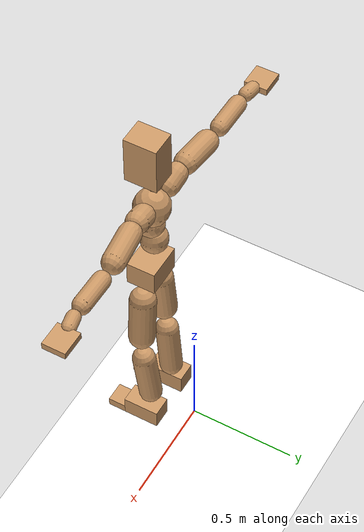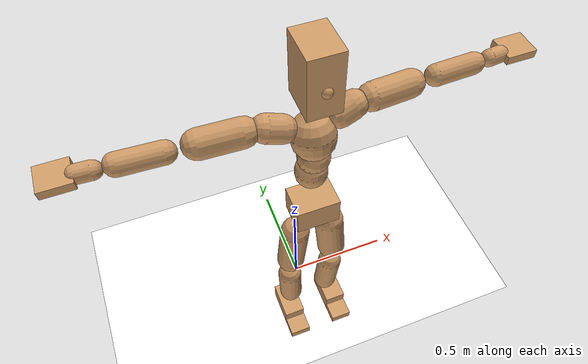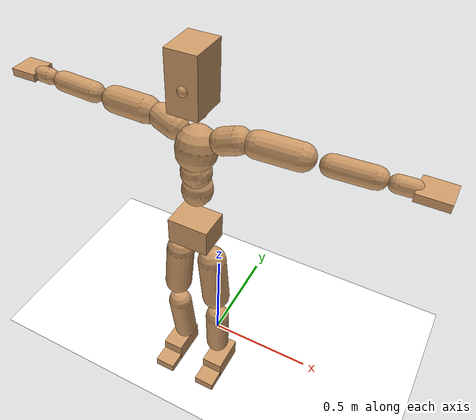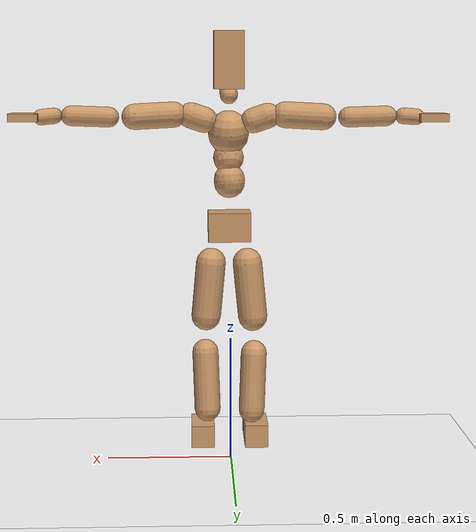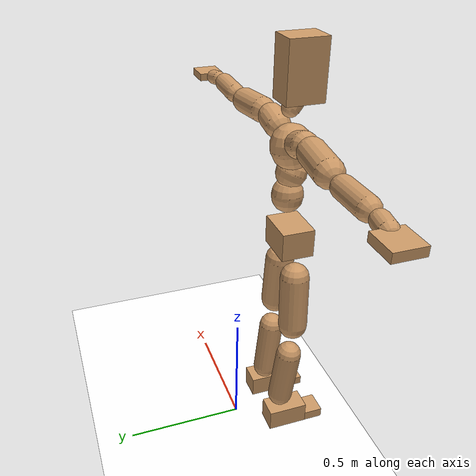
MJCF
<mujoco model="humanoid">
  <option integrator="implicitfast" />

  <visual>
    <global offwidth="1280" offheight="960" />
    <headlight active="1" ambient="0.34 0.34 0.34" diffuse="0.5 0.5 0.5" />
  </visual>

  <default>
    <joint damping="2" stiffness="2" armature="0.01" limited="true" solimplimit="0 .99 .01" />
    <geom condim="1" friction="0.7 0.005 0.0001" solimp=".99 .99 .003" solref="0.015 1" margin="0.001" rgba="0.8 0.6 .4 1" />
    <default class="smplcontact">
      <geom condim="3" friction="1. 0.005 0.0001" solref="0.015 1" solimp="0.98 0.98 0.001" priority="1" />
    </default>
    <default class="stiff_medium">
      <joint stiffness="10" />
    </default>
    <default class="stiff_medium_higher">
      <joint stiffness="50" />
    </default>
    <default class="stiff_high">
      <joint stiffness="100" />
    </default>
  </default>

  <asset>
    <texture type="skybox" builtin="gradient" rgb1="0.99 0.99 0.99" rgb2="0.608 0.828 0.892" width="100" />
    <texture builtin="flat" height="1278" mark="cross" markrgb="1 1 1" name="texgeom" random="0.01" rgb1="0.8 0.6 0.4" rgb2="0.8 0.6 0.4" type="cube" width="127" />
    <texture name="texplane" type="2d" builtin="checker" markrgb="1 1 1" rgb1="0.756 0.772 0.76" rgb2="0.6 0.6 0.6" width="100" height="100" />
    <material name="MatPlane" reflectance="0.5" texture="texplane" texrepeat="1 1" texuniform="true" />
    <material name="geom" texture="texgeom" texuniform="true" />
  </asset>

  <worldbody>
    <light name="tracking_light" pos="0 0 7" dir="0 0 -1" directional="true" cutoff="100" exponent="1" diffuse="1 1 1" specular="0.1 0.1 0.1" mode="trackcom" />
    <camera name="back" pos="0 3 2.4" xyaxes="-1 0 0 0 -1 2" mode="trackcom" />
    <camera name="side" pos="-3 0 2.4" xyaxes="0 -1 0 1 0 2" mode="trackcom" />
    <camera name="front_side" pos="-2.8 -2.8 0.8" xyaxes="0.5 -0.5 0 0.1 0.1 1" mode="trackcom" />
    <geom condim="3" name="floor" pos="0 0 0" rgba="1 1 1 1" size="100 100 .2" type="plane" material="MatPlane" />
    <body name="Pelvis" pos="-0.0018 -0.2233 0.9367" euler="90 0 0">
      <site name="Pelvis" size="0.01" />
      <freejoint name="Pelvis" />
      <geom type="box" pos="-0.0000 -0.0121 -0.0055" size="0.087658 0.059204 0.06806" quat="1.0000 0.0000 0.0000 0.0000" density="3165.830099" name="Pelvis" />
      <body name="L_Hip" pos="0.0695 -0.0914 -0.0068">
        <joint name="L_Hip_x" type="hinge" pos="0 0 0" axis="1 0 0" stiffness="10.0" range="-160.0 22.92" class="stiff_medium" damping="15.0" armature="0.01"/>
        <joint name="L_Hip_y" type="hinge" pos="0 0 0" axis="0 1 0" stiffness="10.0" range="-70.0 70.0" class="stiff_medium" damping="10.000000000000007" armature="0.010000000000000014"/>
        <joint name="L_Hip_z" type="hinge" pos="0 0 0" axis="0 0 1" stiffness="10.0" range="-28.65 90.0" class="stiff_medium" damping="9.999999999999998" armature="0.009999999999999998"/>
        <geom type="capsule" density="2040.816327" fromto="0.0069 -0.075 -0.0009 0.0274 -0.3002 -0.0036" size="0.0615" name="L_Hip" />
        <body name="L_Knee" pos="0.0343 -0.3752 -0.0045">
          <joint name="L_Knee_x" type="hinge" pos="0 0 0" axis="1 0 0" range="-5.16 171.89" damping="8.000000000000004" armature="0.010000000000000009" stiffness="2.0"/>
          <joint name="L_Knee_y" type="hinge" pos="0 0 0" axis="0 1 0" range="-4.58 6.88" damping="8.000000000000004" armature="0.01000000000000001" stiffness="2.0"/>
          <joint name="L_Knee_z" type="hinge" pos="0 0 0" axis="0 0 1" range="-6.88 4.58" damping="8.000000000000002" armature="0.010000000000000005" stiffness="2.0"/>
          <geom type="capsule" density="1234.567901" fromto="-0.0027 -0.0796 -0.0087 -0.0109 -0.3184 -0.035" size="0.0541" name="L_Knee" />
          <body name="L_Ankle" pos="-0.0136 -0.398 -0.0437">
            <joint name="L_Ankle_x" type="hinge" pos="0 0 0" axis="1 0 0" range="-45.84 45.84" class="stiff_medium" damping="6.000000000000027" armature="0.01000000000000009" stiffness="10.0"/>
            <joint name="L_Ankle_y" type="hinge" pos="0 0 0" axis="0 1 0" range="-74.48 22.92" class="stiff_medium" damping="3.0" armature="0.010000000000000002" stiffness="10.0"/>
            <joint name="L_Ankle_z" type="hinge" pos="0 0 0" axis="0 0 1" range="-4.58 4.58" class="stiff_medium" damping="5.999999999999902" armature="0.009999999999999676" stiffness="10.0"/>
            <geom type="box" pos="0.0233 -0.0239 0.0242" size="0.0483 0.0464 0.085" quat="1.0000 0.0000 0.0000 0.0000" density="449.071558" name="L_Ankle" class="smplcontact" />
            <body name="L_Toe" pos="0.0264 -0.0558 0.1193">
              <joint name="L_Toe_x" type="hinge" pos="0 0 0" axis="1 0 0" range="-91.67 22.92" armature="0.009999999999999665" damping="1.9999999999999665" stiffness="2.0"/>
              <joint name="L_Toe_y" type="hinge" pos="0 0 0" axis="0 1 0" range="-4.58 4.58" armature="0.01" damping="2.0" stiffness="2.0"/>
              <joint name="L_Toe_z" type="hinge" pos="0 0 0" axis="0 0 1" range="-4.58 4.58" armature="0.009999999999998623" damping="1.999999999999862" stiffness="2.0"/>
              <geom type="box" pos="-0.003 0.0055 0.0248" size="0.0478 0.02 0.0496" quat="1.0000 0.0000 0.0000 0.0000" density="423.206892" name="L_Toe" class="smplcontact" />
            </body>
          </body>
        </body>
      </body>
      <body name="R_Hip" pos="-0.0677 -0.0905 -0.0043">
        <joint name="R_Hip_x" type="hinge" pos="0 0 0" axis="1 0 0" stiffness="10.0" range="-160.0 22.92" class="stiff_medium" damping="15.0" armature="0.01"/>
        <joint name="R_Hip_y" type="hinge" pos="0 0 0" axis="0 1 0" stiffness="10.0" range="-70.0 70.0" class="stiff_medium" damping="10.000000000000007" armature="0.010000000000000014"/>
        <joint name="R_Hip_z" type="hinge" pos="0 0 0" axis="0 0 1" stiffness="10.0" range="-90.0 28.65" class="stiff_medium" damping="9.999999999999998" armature="0.009999999999999998"/>
        <geom type="capsule" density="2040.816327" fromto="-0.0077 -0.0765 -0.0018 -0.0306 -0.3061 -0.0071" size="0.0606" name="R_Hip" />
        <body name="R_Knee" pos="-0.0383 -0.3826 -0.0089">
          <joint name="R_Knee_x" type="hinge" pos="0 0 0" axis="1 0 0" range="-5.16 171.89" damping="8.000000000000004" armature="0.010000000000000009" stiffness="2.0"/>
          <joint name="R_Knee_y" type="hinge" pos="0 0 0" axis="0 1 0" range="-6.88 4.58" damping="8.000000000000004" armature="0.01000000000000001" stiffness="2.0"/>
          <joint name="R_Knee_z" type="hinge" pos="0 0 0" axis="0 0 1" range="-4.58 6.88" damping="8.000000000000002" armature="0.010000000000000005" stiffness="2.0"/>
          <geom type="capsule" density="1234.567901" fromto="0.0032 -0.0797 -0.0085 0.0126 -0.3187 -0.0338" size="0.0541" name="R_Knee" />
          <body name="R_Ankle" pos="0.0158 -0.3984 -0.0423">
            <joint name="R_Ankle_x" type="hinge" pos="0 0 0" axis="1 0 0" range="-45.84 45.84" class="stiff_medium" damping="6.000000000000027" armature="0.01000000000000009" stiffness="10.0"/>
            <joint name="R_Ankle_y" type="hinge" pos="0 0 0" axis="0 1 0" range="-22.92 74.48" class="stiff_medium" damping="3.0" armature="0.010000000000000002" stiffness="10.0"/>
            <joint name="R_Ankle_z" type="hinge" pos="0 0 0" axis="0 0 1" range="-4.58 4.58" class="stiff_medium" damping="5.999999999999902" armature="0.009999999999999676" stiffness="10.0"/>
            <geom type="box" pos="-0.0212 -0.0174 0.0256" size="0.0483 0.0478 0.0865" quat="1.0000 0.0000 0.0000 0.0000" density="434.700981" name="R_Ankle" class="smplcontact" />
            <body name="R_Toe" pos="-0.0254 -0.0481 0.1233">
              <joint name="R_Toe_x" type="hinge" pos="0 0 0" axis="1 0 0" range="-91.67 22.92" armature="0.009999999999999665" damping="1.9999999999999665" stiffness="2.0"/>
              <joint name="R_Toe_y" type="hinge" pos="0 0 0" axis="0 1 0" range="-4.58 4.58" armature="0.01" damping="2.0" stiffness="2.0"/>
              <joint name="R_Toe_z" type="hinge" pos="0 0 0" axis="0 0 1" range="-4.58 4.58" armature="0.009999999999998623" damping="1.999999999999862" stiffness="2.0"/>
              <geom type="box" pos="0.0042 0.0045 0.0227" size="0.0479 0.0216 0.0493" quat="1.0000 0.0000 0.0000 0.0000" density="407.384095" name="R_Toe" class="smplcontact" />
            </body>
          </body>
        </body>
      </body>
      <body name="Torso" pos="-0.0025 0.109 -0.0267">
        <joint name="Torso_x" type="hinge" pos="0 0 0" axis="1 0 0" range="-25.78 57.3" class="stiff_medium" damping="12.728474776128008" armature="0.008708750888250492" stiffness="8.26826422222222"/>
        <joint name="Torso_y" type="hinge" pos="0 0 0" axis="0 1 0" range="-57.3 57.3" class="stiff_high" damping="17.87412311921509" armature="0.00977748343410378" stiffness="81.68878000000001"/>
        <joint name="Torso_z" type="hinge" pos="0 0 0" axis="0 0 1" range="-34.38 34.38" class="stiff_high" damping="16.959069752024767" armature="0.00912557270784021" stiffness="78.79232790697674"/>
        <geom type="capsule" density="2040.816327" fromto="0.0025 0.0608 0.0005 0.003 0.0743 0.0006" size="0.063058" name="Torso" />
        <body name="Spine" pos="0.0055 0.1352 0.0011">
          <joint name="Spine_x" type="hinge" pos="0 0 0" axis="1 0 0" stiffness="8.565803333333335" range="-25.78 57.3" class="stiff_medium" damping="13.258304531440277" armature="0.009120641032094144"/>
          <joint name="Spine_y" type="hinge" pos="0 0 0" axis="0 1 0" stiffness="8.705589069767441" range="-57.3 57.3" class="stiff_high" damping="7.395731618239993" armature="0.009817121099353687"/>
          <joint name="Spine_z" type="hinge" pos="0 0 0" axis="0 0 1" stiffness="17.37568266666667" range="-34.38 34.38" class="stiff_high" damping="10.950811105336156" armature="0.009585575728422991"/>
          <geom type="capsule" density="2040.816327" fromto="0.0007 0.0238 0.0114 0.0008 0.0291 0.014" size="0.06191" name="Spine" />
          <body name="Chest" pos="0.0015 0.0529 0.0254">
            <joint name="Chest_x" type="hinge" pos="0 0 0" axis="1 0 0" stiffness="8.965253488372092" range="-25.78 57.3" class="stiff_medium" damping="13.703270111226741" armature="0.0093090067477259"/>
            <joint name="Chest_y" type="hinge" pos="0 0 0" axis="0 1 0" stiffness="9.41088953488372" range="-57.3 57.3" class="stiff_high" damping="7.7002723509890405" armature="0.009844678148452739"/>
            <joint name="Chest_z" type="hinge" pos="0 0 0" axis="0 0 1" stiffness="17.726312444444442" range="-34.38 34.38" class="stiff_high" damping="11.150454150982299" armature="0.009741688000914043"/>
            <geom type="capsule" density="2040.816327" fromto="-0.0009 0.0682 -0.0173 -0.001 0.0833 -0.0212" size="0.082164" name="Chest" />
            <body name="Neck" pos="-0.0028 0.2139 -0.0429">
              <joint name="Neck_x" type="hinge" pos="0 0 0" axis="1 0 0" range="-28.65 57.3" class="stiff_medium_higher" damping="9.812873501908179" armature="0.00993085806467006" stiffness="48.48145333333332"/>
              <joint name="Neck_y" type="hinge" pos="0 0 0" axis="0 1 0" range="-40.11 40.11" class="stiff_medium_higher" damping="9.749004747329652" armature="0.009738473106291522" stiffness="48.797738888888894"/>
              <joint name="Neck_z" type="hinge" pos="0 0 0" axis="0 0 1" range="-40.11 40.11" class="stiff_medium_higher" damping="9.91251978755331" armature="0.009944022934157455" stiffness="49.405582222222215"/>
              <geom type="capsule" density="1000" fromto="0.001 0.013 0.0103 0.0041 0.052 0.0411" size="0.035752" name="Neck" />
              <body name="Head" pos="0.0052 0.065 0.0513">
                <joint name="Head_x" type="hinge" pos="0 0 0" axis="1 0 0" range="-28.65 57.3" class="stiff_medium_higher" damping="1.9999999999999987" armature="0.009999999999999986" stiffness="50.0"/>
                <joint name="Head_y" type="hinge" pos="0 0 0" axis="0 1 0" range="-40.11 40.11" class="stiff_medium_higher" damping="2.0" armature="0.010000000000000002" stiffness="50.0"/>
                <joint name="Head_z" type="hinge" pos="0 0 0" axis="0 0 1" range="-40.11 40.11" class="stiff_medium_higher" damping="1.9999999999999987" armature="0.009999999999999988" stiffness="50.0"/>
                <geom type="box" pos="-0.0042 0.0876 -0.0116" size="0.0606 0.1154 0.076" quat="1.0000 0.0000 0.0000 0.0000" density="1018.069894" name="Head" />
                <geom type="capsule" name="nose" size="0.02 0.01" pos="0 0.07 0.05" quat="1 0 0 0" mass="0" contype="0" conaffinity="0" />
              </body>
            </body>
            <body name="L_Thorax" pos="0.0788 0.1217 -0.0341">
              <joint name="L_Thorax_x" type="hinge" pos="0 0 0" axis="1 0 0" range="-10.89 4.58" class="stiff_medium_higher" damping="20.000000000000018" armature="0.010000000000000021" stiffness="50.0"/>
              <joint name="L_Thorax_y" type="hinge" pos="0 0 0" axis="0 1 0" range="-28.65 17.19" class="stiff_medium_higher" damping="20.0" armature="0.010000000000000002" stiffness="50.0"/>
              <joint name="L_Thorax_z" type="hinge" pos="0 0 0" axis="0 0 1" range="-31.51 40.11" class="stiff_medium_higher" damping="20.0" armature="0.010000000000000002" stiffness="50.0"/>
              <geom type="capsule" density="1000" fromto="0.0182 0.0061 -0.0018 0.0728 0.0244 -0.0071" size="0.0521" name="L_Thorax" />
              <body name="L_Shoulder" pos="0.091 0.0305 -0.0089">
                <joint name="L_Shoulder_x" type="hinge" pos="0 0 0" axis="1 0 0" range="-97.4 97.4" class="stiff_medium" damping="6.000000000000085" armature="0.010000000000000286" stiffness="10.0"/>
                <joint name="L_Shoulder_y" type="hinge" pos="0 0 0" axis="0 1 0" range="-108.86 80.21" class="stiff_medium" damping="5.999999999999999" armature="0.009999999999999998" stiffness="10.0"/>
                <joint name="L_Shoulder_z" type="hinge" pos="0 0 0" axis="0 0 1" range="-97.4 85.94" class="stiff_medium" damping="6.000000000000002" armature="0.010000000000000007" stiffness="10.0"/>
                <geom type="capsule" density="1000" fromto="0.0519 -0.0026 -0.0055 0.2077 -0.0102 -0.022" size="0.0517" name="L_Shoulder" />
                <body name="L_Elbow" pos="0.2596 -0.0128 -0.0275">
                  <joint name="L_Elbow_x" type="hinge" pos="0 0 0" axis="1 0 0" range="-17.19 4.58" damping="4.99999999999986" armature="0.009999999999999442" stiffness="2.0"/>
                  <joint name="L_Elbow_y" type="hinge" pos="0 0 0" axis="0 1 0" range="-180.0 17.19" damping="5.0000000000000036" armature="0.010000000000000014" stiffness="2.0"/>
                  <joint name="L_Elbow_z" type="hinge" pos="0 0 0" axis="0 0 1" range="-100.84 4.58" damping="5.0" armature="0.010000000000000002" stiffness="2.0"/>
                  <geom type="capsule" density="1000" fromto="0.0498 0.0018 -0.0002 0.1994 0.0072 -0.0009" size="0.0405" name="L_Elbow" />
                  <body name="L_Wrist" pos="0.2492 0.009 -0.0012">
                    <joint name="L_Wrist_x" type="hinge" pos="0 0 0" axis="1 0 0" range="-180.0 22.92" armature="0.010000000000000299" damping="2.0000000000000298" stiffness="2.0"/>
                    <joint name="L_Wrist_y" type="hinge" pos="0 0 0" axis="0 1 0" range="-17.19 17.19" armature="0.009999999999999882" damping="1.9999999999999882" stiffness="2.0"/>
                    <joint name="L_Wrist_z" type="hinge" pos="0 0 0" axis="0 0 1" range="-22.92 22.92" armature="0.00999999999999996" damping="1.999999999999996" stiffness="2.0"/>
                    <geom type="capsule" density="1000" fromto="0.0168 -0.0016 -0.003 0.0672 -0.0065 -0.012" size="0.0318" name="L_Wrist" class="smplcontact" />
                    <body name="L_Hand" pos="0.084 -0.0082 -0.0149">
                      <joint name="L_Hand_x" type="hinge" pos="0 0 0" axis="1 0 0" range="-17.19 17.19" armature="0.0099999999999999" damping="1.99999999999999" stiffness="2.0"/>
                      <joint name="L_Hand_y" type="hinge" pos="0 0 0" axis="0 1 0" range="-51.57 51.57" armature="0.00999999999999994" damping="1.999999999999994" stiffness="2.0"/>
                      <joint name="L_Hand_z" type="hinge" pos="0 0 0" axis="0 0 1" range="-91.67 91.67" armature="0.009999999999999875" damping="1.9999999999999876" stiffness="2.0"/>
                      <geom type="box" pos="0.0493 0.001 -0.0058" size="0.0585 0.0158 0.0538" quat="1.0000 0.0000 0.0000 0.0000" density="400.552564" name="L_Hand" class="smplcontact" />
                    </body>
                  </body>
                </body>
              </body>
            </body>
            <body name="R_Thorax" pos="-0.0818 0.1188 -0.0386">
              <joint name="R_Thorax_x" type="hinge" pos="0 0 0" axis="1 0 0" range="-10.89 4.58" class="stiff_medium_higher" damping="20.000000000000018" armature="0.010000000000000021" stiffness="50.0"/>
              <joint name="R_Thorax_y" type="hinge" pos="0 0 0" axis="0 1 0" range="-17.19 28.65" class="stiff_medium_higher" damping="20.0" armature="0.010000000000000002" stiffness="50.0"/>
              <joint name="R_Thorax_z" type="hinge" pos="0 0 0" axis="0 0 1" range="-40.11 31.51" class="stiff_medium_higher" damping="20.0" armature="0.010000000000000002" stiffness="50.0"/>
              <geom type="capsule" density="1000" fromto="-0.0192 0.0065 -0.0018 -0.0768 0.026 -0.0073" size="0.0511" name="R_Thorax" />
              <body name="R_Shoulder" pos="-0.096 0.0326 -0.0091">
                <joint name="R_Shoulder_x" type="hinge" pos="0 0 0" axis="1 0 0" range="-97.4 97.4" class="stiff_medium" damping="6.000000000000085" armature="0.010000000000000286" stiffness="10.0"/>
                <joint name="R_Shoulder_y" type="hinge" pos="0 0 0" axis="0 1 0" range="-80.21 108.86" class="stiff_medium" damping="5.999999999999999" armature="0.009999999999999998" stiffness="10.0"/>
                <joint name="R_Shoulder_z" type="hinge" pos="0 0 0" axis="0 0 1" range="-85.94 97.4" class="stiff_medium" damping="6.000000000000002" armature="0.010000000000000007" stiffness="10.0"/>
                <geom type="capsule" density="1000" fromto="-0.0507 -0.0027 -0.0043 -0.203 -0.0107 -0.0171" size="0.0531" name="R_Shoulder" />
                <body name="R_Elbow" pos="-0.2537 -0.0133 -0.0214">
                  <joint name="R_Elbow_x" type="hinge" pos="0 0 0" axis="1 0 0" range="-17.19 4.58" damping="4.99999999999986" armature="0.009999999999999442" stiffness="2.0"/>
                  <joint name="R_Elbow_y" type="hinge" pos="0 0 0" axis="0 1 0" range="-17.19 180.0" damping="5.0000000000000036" armature="0.010000000000000014" stiffness="2.0"/>
                  <joint name="R_Elbow_z" type="hinge" pos="0 0 0" axis="0 0 1" range="-4.58 100.84" damping="5.0" armature="0.010000000000000002" stiffness="2.0"/>
                  <geom type="capsule" density="1000" fromto="-0.0511 0.0016 -0.0011 -0.2042 0.0062 -0.0044" size="0.0408" name="R_Elbow" />
                  <body name="R_Wrist" pos="-0.2553 0.0078 -0.0056">
                    <joint name="R_Wrist_x" type="hinge" pos="0 0 0" axis="1 0 0" range="-180.0 22.92" armature="0.010000000000000299" damping="2.0000000000000298" stiffness="2.0"/>
                    <joint name="R_Wrist_y" type="hinge" pos="0 0 0" axis="0 1 0" range="-17.19 17.19" armature="0.009999999999999882" damping="1.9999999999999882" stiffness="2.0"/>
                    <joint name="R_Wrist_z" type="hinge" pos="0 0 0" axis="0 0 1" range="-22.92 22.92" armature="0.00999999999999996" damping="1.999999999999996" stiffness="2.0"/>
                    <geom type="capsule" density="1000" fromto="-0.0169 -0.0012 -0.0021 -0.0677 -0.0049 -0.0083" size="0.0326" name="R_Wrist" class="smplcontact" />
                    <body name="R_Hand" pos="-0.0846 -0.0061 -0.0103">
                      <joint name="R_Hand_x" type="hinge" pos="0 0 0" axis="1 0 0" range="-17.19 17.19" armature="0.0099999999999999" damping="1.99999999999999" stiffness="2.0"/>
                      <joint name="R_Hand_y" type="hinge" pos="0 0 0" axis="0 1 0" range="-51.57 51.57" armature="0.00999999999999994" damping="1.999999999999994" stiffness="2.0"/>
                      <joint name="R_Hand_z" type="hinge" pos="0 0 0" axis="0 0 1" range="-91.67 91.67" armature="0.009999999999999875" damping="1.9999999999999876" stiffness="2.0"/>
                      <geom type="box" pos="-0.0462 -0.0009 -0.0079" size="0.0569 0.0164 0.0546" quat="1.0000 0.0000 0.0000 0.0000" density="403.679611" name="R_Hand" class="smplcontact" />
                    </body>
                  </body>
                </body>
              </body>
            </body>
          </body>
        </body>
      </body>
    </body>
  </worldbody>
  <actuator>
    <general name="L_Hip_x" joint="L_Hip_x" biastype="affine" gainprm="287.33006409732246" biasprm="-215.3247604770444 -180.0 -2.0" ctrllimited="true" ctrlrange="-1 1" forcerange="-360.0 360.0" />
    <general name="L_Hip_y" joint="L_Hip_y" biastype="affine" gainprm="219.9114857512855" biasprm="0.0 -180.0 -2.0000000000000013" ctrllimited="true" ctrlrange="-1 1" forcerange="-360.0 360.0" />
    <general name="L_Hip_z" joint="L_Hip_z" biastype="affine" gainprm="186.3749841742145" biasprm="96.3683546488669 -180.0 -1.9999999999999998" ctrllimited="true" ctrlrange="-1 1" forcerange="-360.0 360.0" />
    <general name="L_Knee_x" joint="L_Knee_x" biastype="affine" gainprm="278.10948965903646" biasprm="261.8988715665131 -180.0 -2.000000000000001" ctrllimited="true" ctrlrange="-1 1" forcerange="-360.0 360.0" />
    <general name="L_Knee_y" joint="L_Knee_y" biastype="affine" gainprm="18.001325905069514" biasprm="3.612831551628262 -180.0 -2.000000000000001" ctrllimited="true" ctrlrange="-1 1" forcerange="-360.0 360.0" />
    <general name="L_Knee_z" joint="L_Knee_z" biastype="affine" gainprm="18.001325905069514" biasprm="-3.612831551628262 -180.0 -2.0000000000000004" ctrllimited="true" ctrlrange="-1 1" forcerange="-360.0 360.0" />
    <general name="L_Ankle_x" joint="L_Ankle_x" biastype="affine" gainprm="72.00530362027807" biasprm="0.0 -90.0 -2.000000000000009" ctrllimited="true" ctrlrange="-1 1" forcerange="-180.0 180.0" />
    <general name="L_Ankle_y" joint="L_Ankle_y" biastype="affine" gainprm="76.49778111491148" biasprm="-40.49512930477244 -90.0 -2.0" ctrllimited="true" ctrlrange="-1 1" forcerange="-180.0 180.0" />
    <general name="L_Ankle_z" joint="L_Ankle_z" biastype="affine" gainprm="7.1942471767206255" biasprm="0.0 -90.0 -1.9999999999999676" ctrllimited="true" ctrlrange="-1 1" forcerange="-180.0 180.0" />
    <general name="L_Toe_x" joint="L_Toe_x" biastype="affine" gainprm="71.99902043497087" biasprm="-43.19689898685965 -72.0 -0.7999999999999866" ctrllimited="true" ctrlrange="-1 1" forcerange="-144.0 144.0" />
    <general name="L_Toe_y" joint="L_Toe_y" biastype="affine" gainprm="5.755397741376501" biasprm="0.0 -72.0 -0.8" ctrllimited="true" ctrlrange="-1 1" forcerange="-144.0 144.0" />
    <general name="L_Toe_z" joint="L_Toe_z" biastype="affine" gainprm="5.755397741376501" biasprm="0.0 -72.0 -0.7999999999999449" ctrllimited="true" ctrlrange="-1 1" forcerange="-144.0 144.0" />
    <general name="R_Hip_x" joint="R_Hip_x" biastype="affine" gainprm="287.33006409732246" biasprm="-215.3247604770444 -180.0 -2.0" ctrllimited="true" ctrlrange="-1 1" forcerange="-360.0 360.0" />
    <general name="R_Hip_y" joint="R_Hip_y" biastype="affine" gainprm="219.9114857512855" biasprm="0.0 -180.0 -2.0000000000000013" ctrllimited="true" ctrlrange="-1 1" forcerange="-360.0 360.0" />
    <general name="R_Hip_z" joint="R_Hip_z" biastype="affine" gainprm="186.3749841742145" biasprm="-96.3683546488669 -180.0 -1.9999999999999998" ctrllimited="true" ctrlrange="-1 1" forcerange="-360.0 360.0" />
    <general name="R_Knee_x" joint="R_Knee_x" biastype="affine" gainprm="278.10948965903646" biasprm="261.8988715665131 -180.0 -2.000000000000001" ctrllimited="true" ctrlrange="-1 1" forcerange="-360.0 360.0" />
    <general name="R_Knee_y" joint="R_Knee_y" biastype="affine" gainprm="18.001325905069514" biasprm="-3.612831551628262 -180.0 -2.000000000000001" ctrllimited="true" ctrlrange="-1 1" forcerange="-360.0 360.0" />
    <general name="R_Knee_z" joint="R_Knee_z" biastype="affine" gainprm="18.001325905069514" biasprm="3.612831551628262 -180.0 -2.0000000000000004" ctrllimited="true" ctrlrange="-1 1" forcerange="-360.0 360.0" />
    <general name="R_Ankle_x" joint="R_Ankle_x" biastype="affine" gainprm="72.00530362027807" biasprm="0.0 -90.0 -2.000000000000009" ctrllimited="true" ctrlrange="-1 1" forcerange="-180.0 180.0" />
    <general name="R_Ankle_y" joint="R_Ankle_y" biastype="affine" gainprm="76.49778111491148" biasprm="40.49512930477244 -90.0 -2.0" ctrllimited="true" ctrlrange="-1 1" forcerange="-180.0 180.0" />
    <general name="R_Ankle_z" joint="R_Ankle_z" biastype="affine" gainprm="7.1942471767206255" biasprm="0.0 -90.0 -1.9999999999999676" ctrllimited="true" ctrlrange="-1 1" forcerange="-180.0 180.0" />
    <general name="R_Toe_x" joint="R_Toe_x" biastype="affine" gainprm="71.99902043497087" biasprm="-43.19689898685965 -72.0 -0.7999999999999866" ctrllimited="true" ctrlrange="-1 1" forcerange="-144.0 144.0" />
    <general name="R_Toe_y" joint="R_Toe_y" biastype="affine" gainprm="5.755397741376501" biasprm="0.0 -72.0 -0.8" ctrllimited="true" ctrlrange="-1 1" forcerange="-144.0 144.0" />
    <general name="R_Toe_z" joint="R_Toe_z" biastype="affine" gainprm="5.755397741376501" biasprm="0.0 -72.0 -0.7999999999999449" ctrllimited="true" ctrlrange="-1 1" forcerange="-144.0 144.0" />
    <general name="Torso_x" joint="Torso_x" biastype="affine" gainprm="143.86973646295385" biasprm="54.58322211497719 -198.43834133333328 -3.394259940300802" ctrllimited="true" ctrlrange="-1 1" forcerange="-297.65751199999994 297.65751199999994" />
    <general name="Torso_y" joint="Torso_y" biastype="affine" gainprm="196.0675135423366" biasprm="0.0 -196.05307200000001 -3.5748246238430177" ctrllimited="true" ctrlrange="-1 1" forcerange="-294.079608 294.079608" />
    <general name="Torso_z" joint="Torso_z" biastype="affine" gainprm="113.46930987780738" biasprm="0.0 -189.10158697674416 -3.3918139504049534" ctrllimited="true" ctrlrange="-1 1" forcerange="-283.65238046511627 283.65238046511627" />
    <general name="Spine_x" joint="Spine_x" biastype="affine" gainprm="149.04698677238733" biasprm="56.54743648369821 -205.57928000000004 -3.5355478750507405" ctrllimited="true" ctrlrange="-1 1" forcerange="-308.36892000000006 308.36892000000006" />
    <general name="Spine_y" joint="Spine_y" biastype="affine" gainprm="208.94952805399288" biasprm="0.0 -208.93413767441862 -3.6978658091199965" ctrllimited="true" ctrlrange="-1 1" forcerange="-313.4012065116279 313.4012065116279" />
    <general name="Spine_z" joint="Spine_z" biastype="affine" gainprm="125.11413060229364" biasprm="0.0 -208.50819200000004 -3.650270368445385" ctrllimited="true" ctrlrange="-1 1" forcerange="-312.76228800000007 312.76228800000007" />
    <general name="Chest_x" joint="Chest_x" biastype="affine" gainprm="155.99751314539026" biasprm="59.184420008939576 -215.16608372093023 -3.654205362993798" ctrllimited="true" ctrlrange="-1 1" forcerange="-322.74912558139533 322.74912558139533" />
    <general name="Chest_y" joint="Chest_y" biastype="affine" gainprm="225.8779860987332" biasprm="0.0 -225.8613488372093 -3.8501361754945203" ctrllimited="true" ctrlrange="-1 1" forcerange="-338.79202325581394 338.79202325581394" />
    <general name="Chest_z" joint="Chest_z" biastype="affine" gainprm="127.63885096301357" biasprm="0.0 -212.71574933333332 -3.716818050327433" ctrllimited="true" ctrlrange="-1 1" forcerange="-319.073624 319.073624" />
    <general name="Neck_x" joint="Neck_x" biastype="affine" gainprm="26.181913254142554" biasprm="8.727304418047519 -34.90664639999999 -0.7850298801526543" ctrllimited="true" ctrlrange="-1 1" forcerange="-69.81329279999999 69.81329279999999" />
    <general name="Neck_y" joint="Neck_y" biastype="affine" gainprm="24.595872032742463" biasprm="0.0 -35.134372 -0.7799203797863722" ctrllimited="true" ctrlrange="-1 1" forcerange="-70.268744 70.268744" />
    <general name="Neck_z" joint="Neck_z" biastype="affine" gainprm="24.902247639134057" biasprm="0.0 -35.57201919999999 -0.7930015830042648" ctrllimited="true" ctrlrange="-1 1" forcerange="-71.14403839999999 71.14403839999999" />
    <general name="Head_x" joint="Head_x" biastype="affine" gainprm="18.001325905069514" biasprm="6.000441968356505 -24.0 -0.7999999999999995" ctrllimited="true" ctrlrange="-1 1" forcerange="-48.0 48.0" />
    <general name="Head_y" joint="Head_y" biastype="affine" gainprm="16.801237511398213" biasprm="0.0 -24.0 -0.8" ctrllimited="true" ctrlrange="-1 1" forcerange="-48.0 48.0" />
    <general name="Head_z" joint="Head_z" biastype="affine" gainprm="16.801237511398213" biasprm="0.0 -24.0 -0.7999999999999995" ctrllimited="true" ctrlrange="-1 1" forcerange="-48.0 48.0" />
    <general name="L_Thorax_x" joint="L_Thorax_x" biastype="affine" gainprm="16.200146117011364" biasprm="-6.6078165480505335 -120.0 -1.6000000000000014" ctrllimited="true" ctrlrange="-1 1" forcerange="-240.0 240.0" />
    <general name="L_Thorax_y" joint="L_Thorax_y" biastype="affine" gainprm="48.00353574685204" biasprm="-12.00088393671301 -120.0 -1.6" ctrllimited="true" ctrlrange="-1 1" forcerange="-240.0 240.0" />
    <general name="L_Thorax_z" joint="L_Thorax_z" biastype="affine" gainprm="75.00028861670033" biasprm="9.00589894029074 -120.0 -1.6" ctrllimited="true" ctrlrange="-1 1" forcerange="-240.0 240.0" />
    <general name="L_Shoulder_x" joint="L_Shoulder_x" biastype="affine" gainprm="81.5976331892389" biasprm="0.0 -48.0 -1.6000000000000227" ctrllimited="true" ctrlrange="-1 1" forcerange="-96.0 96.0" />
    <general name="L_Shoulder_y" joint="L_Shoulder_y" biastype="affine" gainprm="79.19745640189629" biasprm="-12.00088393671301 -48.0 -1.5999999999999999" ctrllimited="true" ctrlrange="-1 1" forcerange="-96.0 96.0" />
    <general name="L_Shoulder_z" joint="L_Shoulder_z" biastype="affine" gainprm="76.79727961455369" biasprm="-4.800353574685214 -48.0 -1.6000000000000005" ctrllimited="true" ctrlrange="-1 1" forcerange="-96.0 96.0" />
    <general name="L_Elbow_x" joint="L_Elbow_x" biastype="affine" gainprm="13.67849441372996" biasprm="-7.923096672353461 -72.0 -0.7999999999999776" ctrllimited="true" ctrlrange="-1 1" forcerange="-144.0 144.0" />
    <general name="L_Elbow_y" joint="L_Elbow_y" biastype="affine" gainprm="123.89813107227425" biasprm="-102.29653998619085 -72.0 -0.8000000000000006" ctrllimited="true" ctrlrange="-1 1" forcerange="-144.0 144.0" />
    <general name="L_Elbow_z" joint="L_Elbow_z" biastype="affine" gainprm="66.23733950828719" biasprm="-60.4819417669107 -72.0 -0.8" ctrllimited="true" ctrlrange="-1 1" forcerange="-144.0 144.0" />
    <general name="L_Wrist_x" joint="L_Wrist_x" biastype="affine" gainprm="21.24973270888136" biasprm="-16.449379134196157 -12.0 -0.8000000000000119" ctrllimited="true" ctrlrange="-1 1" forcerange="-24.0 24.0" />
    <general name="L_Wrist_y" joint="L_Wrist_y" biastype="affine" gainprm="3.6002651810139037" biasprm="0.0 -12.0 -0.7999999999999954" ctrllimited="true" ctrlrange="-1 1" forcerange="-24.0 24.0" />
    <general name="L_Wrist_z" joint="L_Wrist_z" biastype="affine" gainprm="4.800353574685205" biasprm="0.0 -12.0 -0.7999999999999985" ctrllimited="true" ctrlrange="-1 1" forcerange="-24.0 24.0" />
    <general name="L_Hand_x" joint="L_Hand_x" biastype="affine" gainprm="3.6002651810139037" biasprm="0.0 -12.0 -0.799999999999996" ctrllimited="true" ctrlrange="-1 1" forcerange="-24.0 24.0" />
    <general name="L_Hand_y" joint="L_Hand_y" biastype="affine" gainprm="10.800795543041708" biasprm="0.0 -12.0 -0.7999999999999976" ctrllimited="true" ctrlrange="-1 1" forcerange="-24.0 24.0" />
    <general name="L_Hand_z" joint="L_Hand_z" biastype="affine" gainprm="19.199319903638422" biasprm="0.0 -12.0 -0.799999999999995" ctrllimited="true" ctrlrange="-1 1" forcerange="-24.0 24.0" />
    <general name="R_Thorax_x" joint="R_Thorax_x" biastype="affine" gainprm="16.200146117011364" biasprm="-6.6078165480505335 -120.0 -1.6000000000000014" ctrllimited="true" ctrlrange="-1 1" forcerange="-240.0 240.0" />
    <general name="R_Thorax_y" joint="R_Thorax_y" biastype="affine" gainprm="48.00353574685204" biasprm="12.000883936713002 -120.0 -1.6" ctrllimited="true" ctrlrange="-1 1" forcerange="-240.0 240.0" />
    <general name="R_Thorax_z" joint="R_Thorax_z" biastype="affine" gainprm="75.00028861670033" biasprm="-9.00589894029074 -120.0 -1.6" ctrllimited="true" ctrlrange="-1 1" forcerange="-240.0 240.0" />
    <general name="R_Shoulder_x" joint="R_Shoulder_x" biastype="affine" gainprm="81.5976331892389" biasprm="0.0 -48.0 -1.6000000000000227" ctrllimited="true" ctrlrange="-1 1" forcerange="-96.0 96.0" />
    <general name="R_Shoulder_y" joint="R_Shoulder_y" biastype="affine" gainprm="79.19745640189629" biasprm="12.00088393671301 -48.0 -1.5999999999999999" ctrllimited="true" ctrlrange="-1 1" forcerange="-96.0 96.0" />
    <general name="R_Shoulder_z" joint="R_Shoulder_z" biastype="affine" gainprm="76.79727961455369" biasprm="4.800353574685204 -48.0 -1.6000000000000005" ctrllimited="true" ctrlrange="-1 1" forcerange="-96.0 96.0" />
    <general name="R_Elbow_x" joint="R_Elbow_x" biastype="affine" gainprm="13.67849441372996" biasprm="-7.923096672353461 -72.0 -0.7999999999999776" ctrllimited="true" ctrlrange="-1 1" forcerange="-144.0 144.0" />
    <general name="R_Elbow_y" joint="R_Elbow_y" biastype="affine" gainprm="123.89813107227425" biasprm="102.29653998619085 -72.0 -0.8000000000000006" ctrllimited="true" ctrlrange="-1 1" forcerange="-144.0 144.0" />
    <general name="R_Elbow_z" joint="R_Elbow_z" biastype="affine" gainprm="66.23733950828719" biasprm="60.481941766910694 -72.0 -0.8" ctrllimited="true" ctrlrange="-1 1" forcerange="-144.0 144.0" />
    <general name="R_Wrist_x" joint="R_Wrist_x" biastype="affine" gainprm="21.24973270888136" biasprm="-16.449379134196157 -12.0 -0.8000000000000119" ctrllimited="true" ctrlrange="-1 1" forcerange="-24.0 24.0" />
    <general name="R_Wrist_y" joint="R_Wrist_y" biastype="affine" gainprm="3.6002651810139037" biasprm="0.0 -12.0 -0.7999999999999954" ctrllimited="true" ctrlrange="-1 1" forcerange="-24.0 24.0" />
    <general name="R_Wrist_z" joint="R_Wrist_z" biastype="affine" gainprm="4.800353574685205" biasprm="0.0 -12.0 -0.7999999999999985" ctrllimited="true" ctrlrange="-1 1" forcerange="-24.0 24.0" />
    <general name="R_Hand_x" joint="R_Hand_x" biastype="affine" gainprm="3.6002651810139037" biasprm="0.0 -12.0 -0.799999999999996" ctrllimited="true" ctrlrange="-1 1" forcerange="-24.0 24.0" />
    <general name="R_Hand_y" joint="R_Hand_y" biastype="affine" gainprm="10.800795543041708" biasprm="0.0 -12.0 -0.7999999999999976" ctrllimited="true" ctrlrange="-1 1" forcerange="-24.0 24.0" />
    <general name="R_Hand_z" joint="R_Hand_z" biastype="affine" gainprm="19.199319903638422" biasprm="0.0 -12.0 -0.799999999999995" ctrllimited="true" ctrlrange="-1 1" forcerange="-24.0 24.0" />
  </actuator>
  <contact>
    <exclude body1="Torso" body2="Chest" />
    <exclude body1="Head" body2="Chest" />
    <exclude body1="R_Knee" body2="R_Toe" />
    <exclude body1="R_Knee" body2="L_Ankle" />
    <exclude body1="R_Knee" body2="L_Toe" />
    <exclude body1="L_Knee" body2="L_Toe" />
    <exclude body1="L_Knee" body2="R_Ankle" />
    <exclude body1="L_Knee" body2="R_Toe" />
    <exclude body1="L_Shoulder" body2="Chest" />
    <exclude body1="R_Shoulder" body2="Chest" />
  </contact>
  <sensor>
    <framelinvel name="sensor_Pelvis_framelinvel" objtype="xbody" objname="Pelvis" />
    <framelinvel name="sensor_L_Hip_framelinvel" objtype="xbody" objname="L_Hip" />
    <framelinvel name="sensor_L_Knee_framelinvel" objtype="xbody" objname="L_Knee" />
    <framelinvel name="sensor_L_Ankle_framelinvel" objtype="xbody" objname="L_Ankle" />
    <framelinvel name="sensor_L_Toe_framelinvel" objtype="xbody" objname="L_Toe" />
    <framelinvel name="sensor_R_Hip_framelinvel" objtype="xbody" objname="R_Hip" />
    <framelinvel name="sensor_R_Knee_framelinvel" objtype="xbody" objname="R_Knee" />
    <framelinvel name="sensor_R_Ankle_framelinvel" objtype="xbody" objname="R_Ankle" />
    <framelinvel name="sensor_R_Toe_framelinvel" objtype="xbody" objname="R_Toe" />
    <framelinvel name="sensor_Torso_framelinvel" objtype="xbody" objname="Torso" />
    <framelinvel name="sensor_Spine_framelinvel" objtype="xbody" objname="Spine" />
    <framelinvel name="sensor_Chest_framelinvel" objtype="xbody" objname="Chest" />
    <framelinvel name="sensor_Neck_framelinvel" objtype="xbody" objname="Neck" />
    <framelinvel name="sensor_Head_framelinvel" objtype="xbody" objname="Head" />
    <framelinvel name="sensor_L_Thorax_framelinvel" objtype="xbody" objname="L_Thorax" />
    <framelinvel name="sensor_L_Shoulder_framelinvel" objtype="xbody" objname="L_Shoulder" />
    <framelinvel name="sensor_L_Elbow_framelinvel" objtype="xbody" objname="L_Elbow" />
    <framelinvel name="sensor_L_Wrist_framelinvel" objtype="xbody" objname="L_Wrist" />
    <framelinvel name="sensor_L_Hand_framelinvel" objtype="xbody" objname="L_Hand" />
    <framelinvel name="sensor_R_Thorax_framelinvel" objtype="xbody" objname="R_Thorax" />
    <framelinvel name="sensor_R_Shoulder_framelinvel" objtype="xbody" objname="R_Shoulder" />
    <framelinvel name="sensor_R_Elbow_framelinvel" objtype="xbody" objname="R_Elbow" />
    <framelinvel name="sensor_R_Wrist_framelinvel" objtype="xbody" objname="R_Wrist" />
    <framelinvel name="sensor_R_Hand_framelinvel" objtype="xbody" objname="R_Hand" />
    <frameangvel name="sensor_Pelvis_frameangvel" objtype="xbody" objname="Pelvis" />
    <frameangvel name="sensor_L_Hip_frameangvel" objtype="xbody" objname="L_Hip" />
    <frameangvel name="sensor_L_Knee_frameangvel" objtype="xbody" objname="L_Knee" />
    <frameangvel name="sensor_L_Ankle_frameangvel" objtype="xbody" objname="L_Ankle" />
    <frameangvel name="sensor_L_Toe_frameangvel" objtype="xbody" objname="L_Toe" />
    <frameangvel name="sensor_R_Hip_frameangvel" objtype="xbody" objname="R_Hip" />
    <frameangvel name="sensor_R_Knee_frameangvel" objtype="xbody" objname="R_Knee" />
    <frameangvel name="sensor_R_Ankle_frameangvel" objtype="xbody" objname="R_Ankle" />
    <frameangvel name="sensor_R_Toe_frameangvel" objtype="xbody" objname="R_Toe" />
    <frameangvel name="sensor_Torso_frameangvel" objtype="xbody" objname="Torso" />
    <frameangvel name="sensor_Spine_frameangvel" objtype="xbody" objname="Spine" />
    <frameangvel name="sensor_Chest_frameangvel" objtype="xbody" objname="Chest" />
    <frameangvel name="sensor_Neck_frameangvel" objtype="xbody" objname="Neck" />
    <frameangvel name="sensor_Head_frameangvel" objtype="xbody" objname="Head" />
    <frameangvel name="sensor_L_Thorax_frameangvel" objtype="xbody" objname="L_Thorax" />
    <frameangvel name="sensor_L_Shoulder_frameangvel" objtype="xbody" objname="L_Shoulder" />
    <frameangvel name="sensor_L_Elbow_frameangvel" objtype="xbody" objname="L_Elbow" />
    <frameangvel name="sensor_L_Wrist_frameangvel" objtype="xbody" objname="L_Wrist" />
    <frameangvel name="sensor_L_Hand_frameangvel" objtype="xbody" objname="L_Hand" />
    <frameangvel name="sensor_R_Thorax_frameangvel" objtype="xbody" objname="R_Thorax" />
    <frameangvel name="sensor_R_Shoulder_frameangvel" objtype="xbody" objname="R_Shoulder" />
    <frameangvel name="sensor_R_Elbow_frameangvel" objtype="xbody" objname="R_Elbow" />
    <frameangvel name="sensor_R_Wrist_frameangvel" objtype="xbody" objname="R_Wrist" />
    <frameangvel name="sensor_R_Hand_frameangvel" objtype="xbody" objname="R_Hand" />
    <subtreelinvel name="Chest_subtreelinvel" body="Chest" />
    <gyro name="Pelvis_gyro" site="Pelvis" />
  </sensor>
</mujoco>
